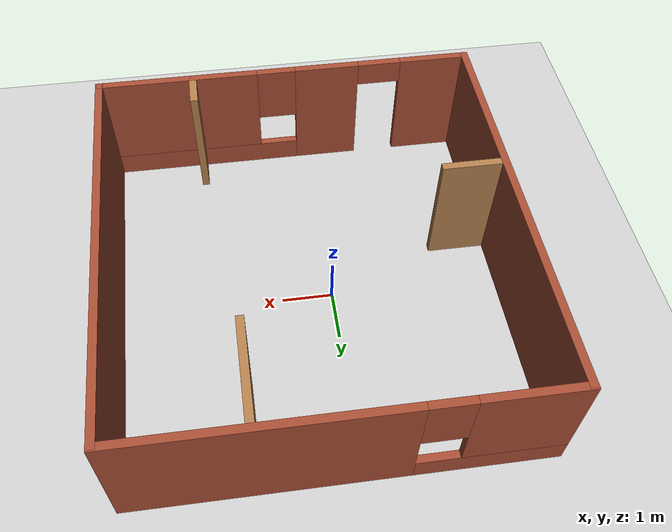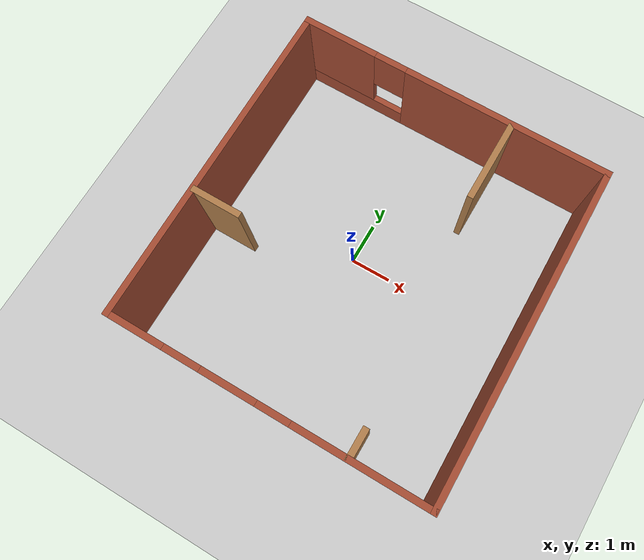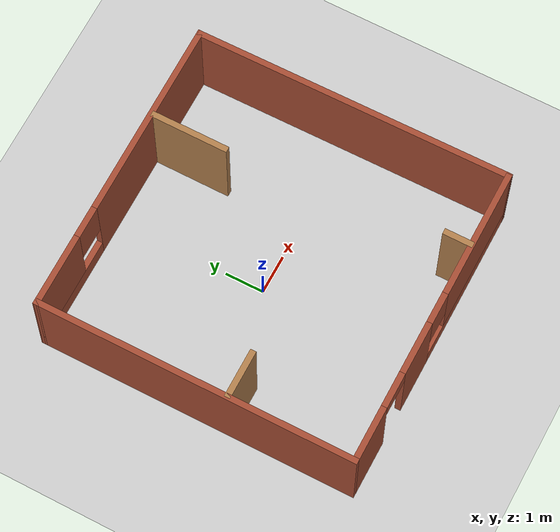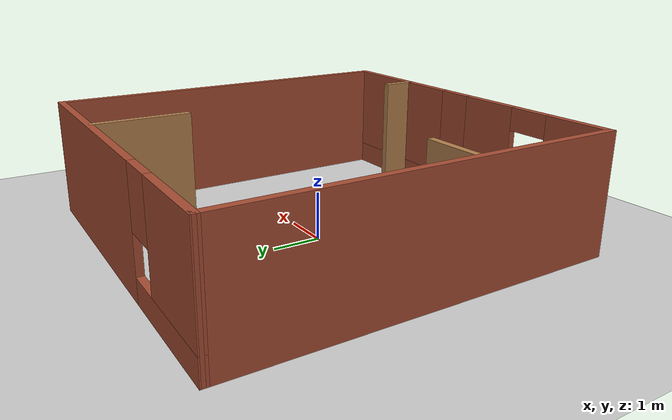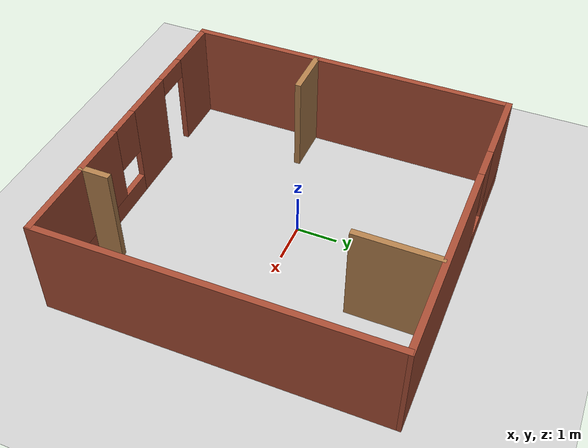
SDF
<?xml version="1.0"?>
<sdf version="1.7">
  <world name="default">
    <!-- Luz y piso básicos -->
    <include>
      <uri>model://sun</uri>
    </include>
    <include>
      <uri>model://ground_plane</uri>
    </include>

    <!-- Tu escenario como MODELO ESTÁTICO dentro del mundo -->

    <model name='world_japc2'>
      <pose>0.419548 -0.104705 0 0 -0 0</pose>
      <link name='Wall_0'>
        <pose>0.055654 -4.00713 0 0 -0 0</pose>
        <visual name='Wall_0_Visual_0'>
          <pose>-3.18219 0 1.25 0 -0 0</pose>
          <geometry>
            <box>
              <size>1.36442 0.15 2.5</size>
            </box>
          </geometry>
          <material>
            <script>
              <uri>file://media/materials/scripts/gazebo.material</uri>
              <name>Gazebo/Bricks</name>
            </script>
            <ambient>1 1 1 1</ambient>
          </material>
          <meta>
            <layer>0</layer>
          </meta>
        </visual>
        <collision name='Wall_0_Collision_0'>
          <geometry>
            <box>
              <size>1.36442 0.15 2.5</size>
            </box>
          </geometry>
          <pose>-3.18219 0 1.25 0 -0 0</pose>
        </collision>
        <visual name='Wall_0_Visual_1'>
          <pose>-0.926705 0 1.25 0 -0 0</pose>
          <geometry>
            <box>
              <size>1.34656 0.15 2.5</size>
            </box>
          </geometry>
          <material>
            <script>
              <uri>file://media/materials/scripts/gazebo.material</uri>
              <name>Gazebo/Bricks</name>
            </script>
            <ambient>1 1 1 1</ambient>
          </material>
          <meta>
            <layer>0</layer>
          </meta>
        </visual>
        <collision name='Wall_0_Collision_1'>
          <geometry>
            <box>
              <size>1.34656 0.15 2.5</size>
            </box>
          </geometry>
          <pose>-0.926705 0 1.25 0 -0 0</pose>
        </collision>
        <visual name='Wall_0_Visual_2'>
          <pose>1.80549 0 0.25 0 -0 0</pose>
          <geometry>
            <box>
              <size>4.11783 0.15 0.5</size>
            </box>
          </geometry>
          <material>
            <script>
              <uri>file://media/materials/scripts/gazebo.material</uri>
              <name>Gazebo/Bricks</name>
            </script>
            <ambient>1 1 1 1</ambient>
          </material>
          <meta>
            <layer>0</layer>
          </meta>
        </visual>
        <collision name='Wall_0_Collision_2'>
          <geometry>
            <box>
              <size>4.11783 0.15 0.5</size>
            </box>
          </geometry>
          <pose>1.80549 0 0.25 0 -0 0</pose>
        </collision>
        <visual name='Wall_0_Visual_3'>
          <pose>2.20549 0 1.5 0 -0 0</pose>
          <geometry>
            <box>
              <size>3.31783 0.15 2</size>
            </box>
          </geometry>
          <material>
            <script>
              <uri>file://media/materials/scripts/gazebo.material</uri>
              <name>Gazebo/Bricks</name>
            </script>
            <ambient>1 1 1 1</ambient>
          </material>
          <meta>
            <layer>0</layer>
          </meta>
        </visual>
        <collision name='Wall_0_Collision_3'>
          <geometry>
            <box>
              <size>3.31783 0.15 2</size>
            </box>
          </geometry>
          <pose>2.20549 0 1.5 0 -0 0</pose>
        </collision>
        <visual name='Wall_0_Visual_4'>
          <pose>0.146574 0 1.9 0 -0 0</pose>
          <geometry>
            <box>
              <size>0.8 0.15 1.2</size>
            </box>
          </geometry>
          <material>
            <script>
              <uri>file://media/materials/scripts/gazebo.material</uri>
              <name>Gazebo/Bricks</name>
            </script>
            <ambient>1 1 1 1</ambient>
          </material>
          <meta>
            <layer>0</layer>
          </meta>
        </visual>
        <collision name='Wall_0_Collision_4'>
          <geometry>
            <box>
              <size>0.8 0.15 1.2</size>
            </box>
          </geometry>
          <pose>0.146574 0 1.9 0 -0 0</pose>
        </collision>
        <visual name='Wall_0_Visual_5'>
          <pose>-2.04998 0 2.25 0 -0 0</pose>
          <geometry>
            <box>
              <size>0.9 0.15 0.5</size>
            </box>
          </geometry>
          <material>
            <script>
              <uri>file://media/materials/scripts/gazebo.material</uri>
              <name>Gazebo/Bricks</name>
            </script>
            <ambient>1 1 1 1</ambient>
          </material>
          <meta>
            <layer>0</layer>
          </meta>
        </visual>
        <collision name='Wall_0_Collision_5'>
          <geometry>
            <box>
              <size>0.9 0.15 0.5</size>
            </box>
          </geometry>
          <pose>-2.04998 0 2.25 0 -0 0</pose>
        </collision>
      </link>
      <link name='Wall_11'>
        <collision name='Wall_11_Collision'>
          <geometry>
            <box>
              <size>0.75 0.15 2.5</size>
            </box>
          </geometry>
          <pose>0 0 1.25 0 -0 0</pose>
        </collision>
        <visual name='Wall_11_Visual'>
          <pose>0 0 1.25 0 -0 0</pose>
          <geometry>
            <box>
              <size>0.75 0.15 2.5</size>
            </box>
          </geometry>
          <material>
            <script>
              <uri>file://media/materials/scripts/gazebo.material</uri>
              <name>Gazebo/Wood</name>
            </script>
            <ambient>1 1 1 1</ambient>
          </material>
          <meta>
            <layer>0</layer>
          </meta>
        </visual>
        <pose>1.94652 -3.67344 0 0 -0 1.5708</pose>
      </link>
      <link name='Wall_2'>
        <collision name='Wall_2_Collision'>
          <geometry>
            <box>
              <size>8.1388 0.15 2.5</size>
            </box>
          </geometry>
          <pose>0 0 1.25 0 -0 0</pose>
        </collision>
        <visual name='Wall_2_Visual'>
          <pose>0 0 1.25 0 -0 0</pose>
          <geometry>
            <box>
              <size>8.1388 0.15 2.5</size>
            </box>
          </geometry>
          <material>
            <script>
              <uri>file://media/materials/scripts/gazebo.material</uri>
              <name>Gazebo/Bricks</name>
            </script>
            <ambient>1 1 1 1</ambient>
          </material>
          <meta>
            <layer>0</layer>
          </meta>
        </visual>
        <pose>3.83176 -0.012927 0 0 -0 1.58079</pose>
      </link>
      <link name='Wall_4'>
        <pose>-0.040148 4.00788 0 0 -0 3.14159</pose>
        <visual name='Wall_4_Visual_0'>
          <pose>-1.34556 0 1.25 0 -0 0</pose>
          <geometry>
            <box>
              <size>5.1229 0.15 2.5</size>
            </box>
          </geometry>
          <material>
            <script>
              <uri>file://media/materials/scripts/gazebo.material</uri>
              <name>Gazebo/Bricks</name>
            </script>
            <ambient>1 1 1 1</ambient>
          </material>
          <meta>
            <layer>0</layer>
          </meta>
        </visual>
        <collision name='Wall_4_Collision_0'>
          <geometry>
            <box>
              <size>5.1229 0.15 2.5</size>
            </box>
          </geometry>
          <pose>-1.34556 0 1.25 0 -0 0</pose>
        </collision>
        <visual name='Wall_4_Visual_1'>
          <pose>2.56145 0 0.25 0 -0 0</pose>
          <geometry>
            <box>
              <size>2.69111 0.15 0.5</size>
            </box>
          </geometry>
          <material>
            <script>
              <uri>file://media/materials/scripts/gazebo.material</uri>
              <name>Gazebo/Bricks</name>
            </script>
            <ambient>1 1 1 1</ambient>
          </material>
          <meta>
            <layer>0</layer>
          </meta>
        </visual>
        <collision name='Wall_4_Collision_1'>
          <geometry>
            <box>
              <size>2.69111 0.15 0.5</size>
            </box>
          </geometry>
          <pose>2.56145 0 0.25 0 -0 0</pose>
        </collision>
        <visual name='Wall_4_Visual_2'>
          <pose>2.96145 0 1.5 0 -0 0</pose>
          <geometry>
            <box>
              <size>1.89111 0.15 2</size>
            </box>
          </geometry>
          <material>
            <script>
              <uri>file://media/materials/scripts/gazebo.material</uri>
              <name>Gazebo/Bricks</name>
            </script>
            <ambient>1 1 1 1</ambient>
          </material>
          <meta>
            <layer>0</layer>
          </meta>
        </visual>
        <collision name='Wall_4_Collision_2'>
          <geometry>
            <box>
              <size>1.89111 0.15 2</size>
            </box>
          </geometry>
          <pose>2.96145 0 1.5 0 -0 0</pose>
        </collision>
        <visual name='Wall_4_Visual_3'>
          <pose>1.61589 0 1.9 0 -0 0</pose>
          <geometry>
            <box>
              <size>0.8 0.15 1.2</size>
            </box>
          </geometry>
          <material>
            <script>
              <uri>file://media/materials/scripts/gazebo.material</uri>
              <name>Gazebo/Bricks</name>
            </script>
            <ambient>1 1 1 1</ambient>
          </material>
          <meta>
            <layer>0</layer>
          </meta>
        </visual>
        <collision name='Wall_4_Collision_3'>
          <geometry>
            <box>
              <size>0.8 0.15 1.2</size>
            </box>
          </geometry>
          <pose>1.61589 0 1.9 0 -0 0</pose>
        </collision>
      </link>
      <link name='Wall_5'>
        <collision name='Wall_5_Collision'>
          <geometry>
            <box>
              <size>8.13845 0.15 2.5</size>
            </box>
          </geometry>
          <pose>0 0 1.25 0 -0 0</pose>
        </collision>
        <visual name='Wall_5_Visual'>
          <pose>0 0 1.25 0 -0 0</pose>
          <geometry>
            <box>
              <size>8.13845 0.15 2.5</size>
            </box>
          </geometry>
          <material>
            <script>
              <uri>file://media/materials/scripts/gazebo.material</uri>
              <name>Gazebo/Bricks</name>
            </script>
            <ambient>1 1 1 1</ambient>
          </material>
          <meta>
            <layer>0</layer>
          </meta>
        </visual>
        <pose>-3.85885 -0.012927 0 0 -0 -1.56747</pose>
      </link>
      <link name='Wall_7'>
        <collision name='Wall_7_Collision'>
          <geometry>
            <box>
              <size>2 0.15 2.5</size>
            </box>
          </geometry>
          <pose>0 0 1.25 0 -0 0</pose>
        </collision>
        <visual name='Wall_7_Visual'>
          <pose>0 0 1.25 0 -0 0</pose>
          <geometry>
            <box>
              <size>2 0.15 2.5</size>
            </box>
          </geometry>
          <material>
            <script>
              <uri>file://media/materials/scripts/gazebo.material</uri>
              <name>Gazebo/Wood</name>
            </script>
            <ambient>1 1 1 1</ambient>
          </material>
          <meta>
            <layer>0</layer>
          </meta>
        </visual>
        <pose>1.44112 3.00182 0 0 -0 -1.5708</pose>
      </link>
      <link name='Wall_9'>
        <collision name='Wall_9_Collision'>
          <geometry>
            <box>
              <size>1.25 0.15 2.5</size>
            </box>
          </geometry>
          <pose>0 0 1.25 0 -0 0</pose>
        </collision>
        <visual name='Wall_9_Visual'>
          <pose>0 0 1.25 0 -0 0</pose>
          <geometry>
            <box>
              <size>1.25 0.15 2.5</size>
            </box>
          </geometry>
          <material>
            <script>
              <uri>file://media/materials/scripts/gazebo.material</uri>
              <name>Gazebo/Wood</name>
            </script>
            <ambient>1 1 1 1</ambient>
          </material>
          <meta>
            <layer>0</layer>
          </meta>
        </visual>
        <pose>-3.24912 -0.834616 0 0 -0 0</pose>
      </link>
      <static>1</static>
    </model>

  </world>
</sdf>
